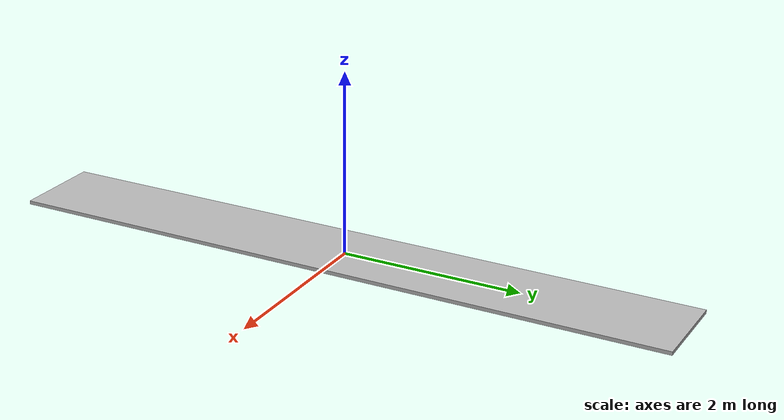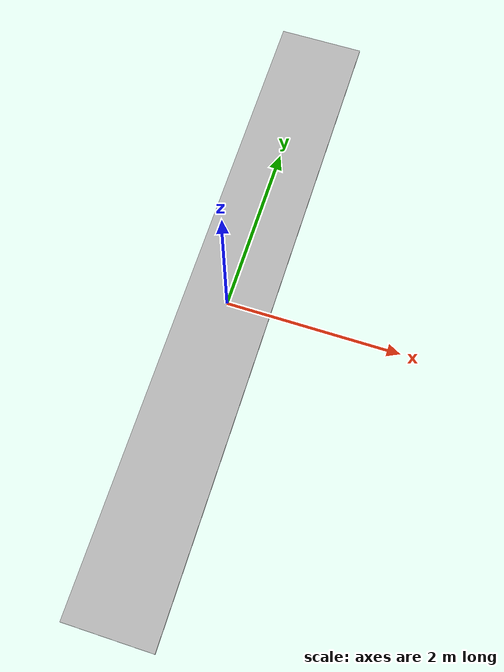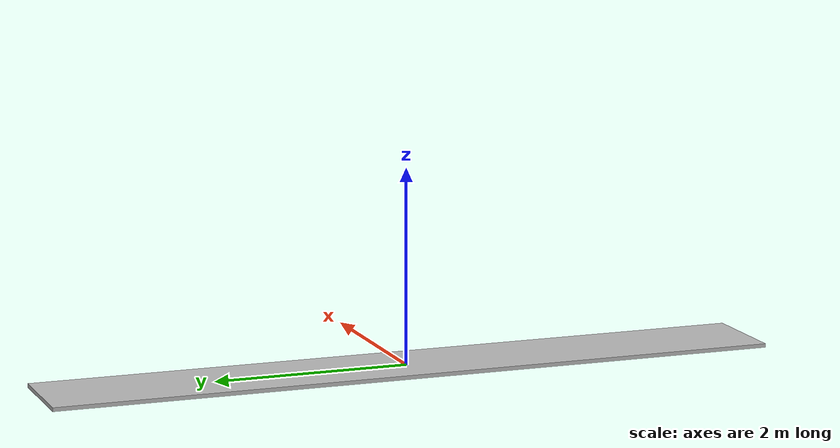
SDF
<?xml version='1.0'?>
<sdf version='1.6'>
		<model name="testvar">
			<self_collide>true</self_collide>
			<pose>0.0 0.0 0.0 0.0 0.0 0.0</pose>
			<!-- Start of parts of the pmodel testvar -->
			<!-- End of parts of the pmodel testvar -->

			<!-- Start of links of the pmodel testvar -->
			<!-- link full name is testvar::Core -->
			<link name="1-Core">
					<pose>0.0 0.0 0.0 0.0 0.0 0.0</pose>
					<inertial>
						<pose>0.0 0.0 0.0 0.0 0.0 0.0</pose>
						<inertia>
							<ixx>1.0</ixx>
							<ixy>0.0</ixy>
							<ixz>0.0</ixz>
							<iyy>1.0</iyy>
							<iyz>0.0</iyz>
							<izz>1.0</izz>
						</inertia>
						<mass>1.0</mass>
					</inertial>
					<!-- body full name is testvar::Core::Spine -->
					<collision name="1--Spine">
						<laser_retro>0.0</laser_retro>
						<pose>0.0 0.0 0.0 0.0 0.0 0.0</pose>
						<geometry>
							<box>
								<size>1.0 7.5 0.03999999910593033</size>
							</box>
						</geometry>
						<surface>
							<bounce>
								<restitution_coefficient>0.0</restitution_coefficient>
								<threshold>100000.0</threshold>
							</bounce>
							<friction>
								<ode>
									<mu>1.0</mu>
									<mu2>1.0</mu2>
									<fdir1>0.0 0.0 0.0</fdir1>
									<slip1>0.0</slip1>
									<slip2>0.0</slip2>
								</ode>
								<torsional>
									<coefficient>1.0</coefficient>
									<surface_radius>0.0</surface_radius>
								</torsional>
							</friction>
						</surface>
					</collision>
					<visual name="1--Spine">
						<laser_retro>0.0</laser_retro>
						<pose>0.0 0.0 0.0 0.0 0.0 0.0</pose>
						<geometry>
							<box>
								<size>1.0 7.5 0.03999999910593033</size>
							</box>
						</geometry>
						<surface>
							<bounce>
								<restitution_coefficient>0.0</restitution_coefficient>
								<threshold>100000.0</threshold>
							</bounce>
							<friction>
								<ode>
									<mu>1.0</mu>
									<mu2>1.0</mu2>
									<fdir1>0.0 0.0 0.0</fdir1>
									<slip1>0.0</slip1>
									<slip2>0.0</slip2>
								</ode>
								<torsional>
									<coefficient>1.0</coefficient>
									<surface_radius>0.0</surface_radius>
								</torsional>
							</friction>
						</surface>
					</visual>
			</link>
			<!-- End of links of the pmodel testvar -->

			<!-- Start of joints of the pmodel testvar -->
			<!-- End of joints of the pmodel testvar -->

			<!-- Start of fixed connections of the pmodel testvar -->
			<!-- End of fixed connections of the pmodel testvar -->
		</model>
</sdf>
